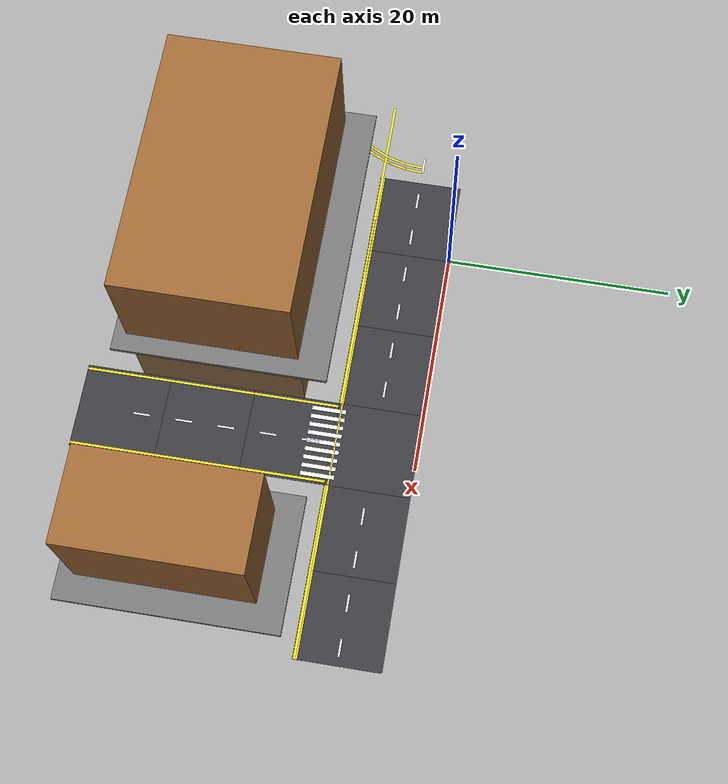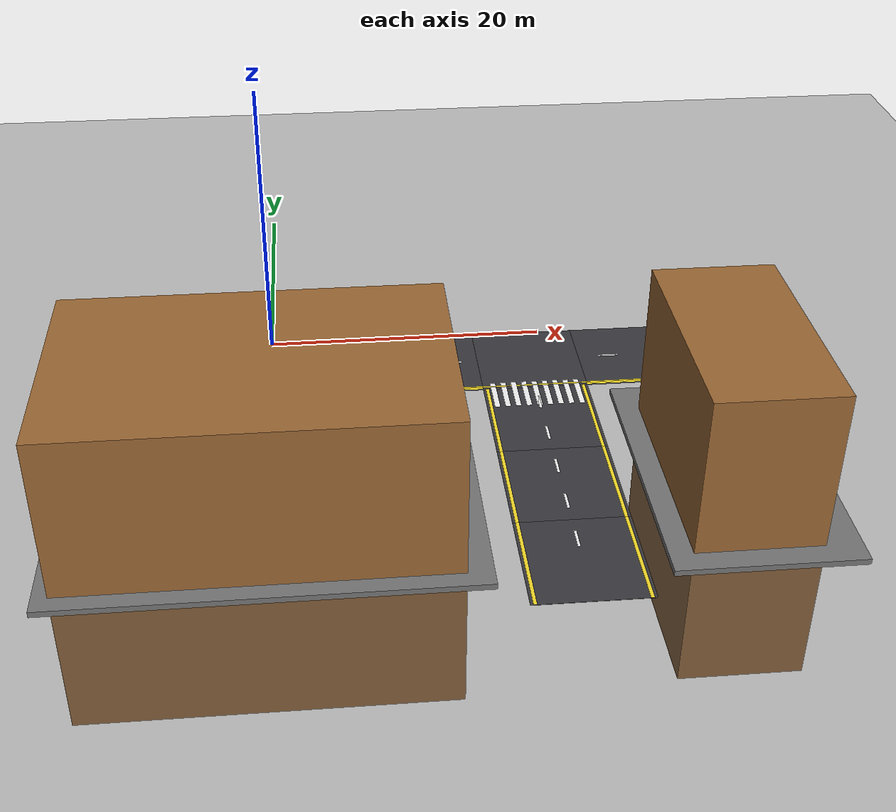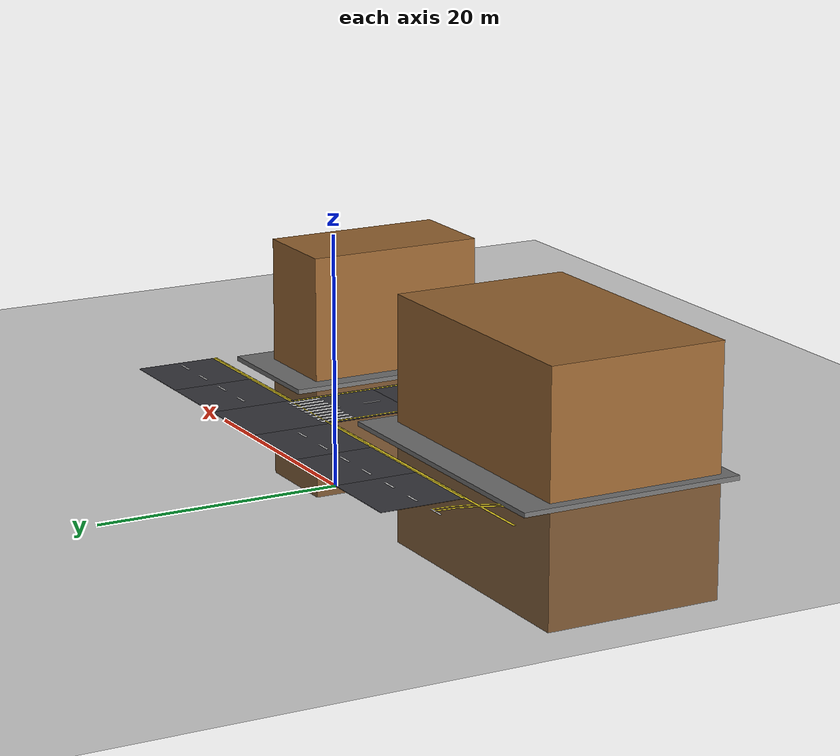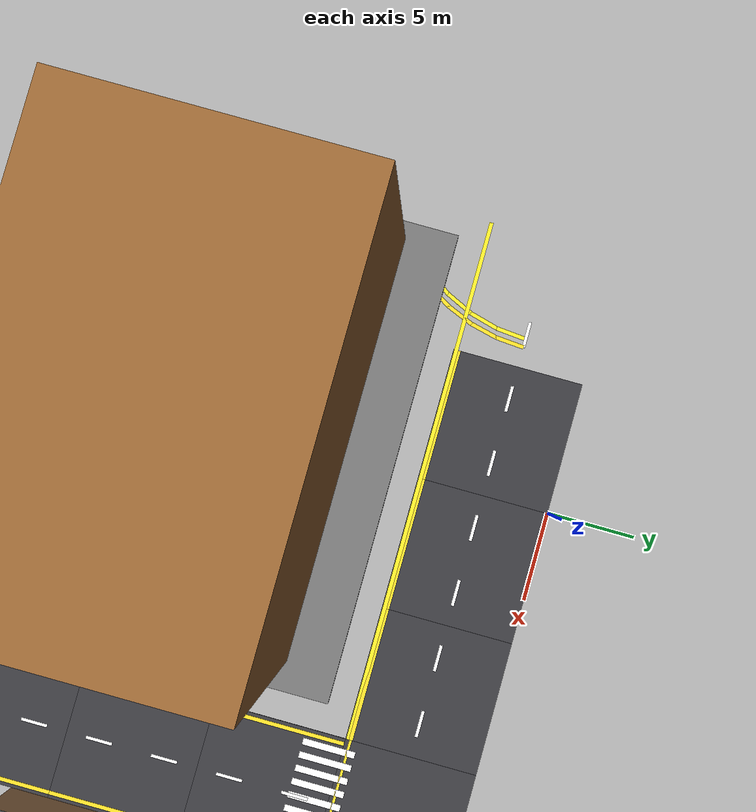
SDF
<sdf version="1.7">
 <world name="compact_city">
  <model name="ground_plane">
   <static>1</static>
   <pose>0 0 0.01 0 -0 0</pose>
   <link name="link">
    <collision name="collision">
     <geometry><plane><normal>0 0 1</normal><size>200 200</size></plane></geometry>
    </collision>
    <visual name="visual">
     <geometry><plane><normal>0 0 1</normal><size>200 200</size></plane></geometry>
     <material>
      <ambient>0.2 0.2 0.2 1</ambient>
      <diffuse>0.25 0.25 0.25 1</diffuse>
      <specular>0.1 0.1 0.1 1</specular>
     </material>
    </visual>
   </link>
  </model>
  <model name="road_tile_49">
   <static>1</static>
   <pose>-3.75 -3.75 0.015 0 -0 0</pose>
   <link name="link">
    <collision name="collision"><geometry><box><size>7.5 7.5 0.03</size></box></geometry></collision>
    <visual name="visual">
     <geometry><box><size>7.5 7.5 0.03</size></box></geometry>
     <material>
      <ambient>0.18 0.18 0.2 1</ambient>
      <diffuse>0.22 0.22 0.24 1</diffuse>
      <specular>0.1 0.1 0.1 1</specular>
     </material>
    </visual>
   </link>
  </model>
  <model name="road_tile_50">
   <static>1</static>
   <pose>3.75 -3.75 0.015 0 -0 0</pose>
   <link name="link">
    <collision name="collision"><geometry><box><size>7.5 7.5 0.03</size></box></geometry></collision>
    <visual name="visual">
     <geometry><box><size>7.5 7.5 0.03</size></box></geometry>
     <material>
      <ambient>0.18 0.18 0.2 1</ambient>
      <diffuse>0.22 0.22 0.24 1</diffuse>
      <specular>0.1 0.1 0.1 1</specular>
     </material>
    </visual>
   </link>
  </model>
  <model name="road_tile_51">
   <static>1</static>
   <pose>11.25 -3.75 0.015 0 -0 0</pose>
   <link name="link">
    <collision name="collision"><geometry><box><size>7.5 7.5 0.03</size></box></geometry></collision>
    <visual name="visual">
     <geometry><box><size>7.5 7.5 0.03</size></box></geometry>
     <material>
      <ambient>0.18 0.18 0.2 1</ambient>
      <diffuse>0.22 0.22 0.24 1</diffuse>
      <specular>0.1 0.1 0.1 1</specular>
     </material>
    </visual>
   </link>
  </model>
  <model name="road_tile_52">
   <static>1</static>
   <pose>18.75 -3.75 0.015 0 -0 0</pose>
   <link name="link">
    <collision name="collision"><geometry><box><size>7.5 7.5 0.03</size></box></geometry></collision>
    <visual name="visual">
     <geometry><box><size>7.5 7.5 0.03</size></box></geometry>
     <material>
      <ambient>0.18 0.18 0.2 1</ambient>
      <diffuse>0.22 0.22 0.24 1</diffuse>
      <specular>0.1 0.1 0.1 1</specular>
     </material>
    </visual>
   </link>
  </model>
  <model name="road_tile_53">
   <static>1</static>
   <pose>26.25 -3.75 0.015 0 -0 0</pose>
   <link name="link">
    <collision name="collision"><geometry><box><size>7.5 7.5 0.03</size></box></geometry></collision>
    <visual name="visual">
     <geometry><box><size>7.5 7.5 0.03</size></box></geometry>
     <material>
      <ambient>0.18 0.18 0.2 1</ambient>
      <diffuse>0.22 0.22 0.24 1</diffuse>
      <specular>0.1 0.1 0.1 1</specular>
     </material>
    </visual>
   </link>
  </model>
  <model name="road_tile_54">
   <static>1</static>
   <pose>33.75 -3.75 0.015 0 -0 0</pose>
   <link name="link">
    <collision name="collision"><geometry><box><size>7.5 7.5 0.03</size></box></geometry></collision>
    <visual name="visual">
     <geometry><box><size>7.5 7.5 0.03</size></box></geometry>
     <material>
      <ambient>0.18 0.18 0.2 1</ambient>
      <diffuse>0.22 0.22 0.24 1</diffuse>
      <specular>0.1 0.1 0.1 1</specular>
     </material>
    </visual>
   </link>
  </model>
  <model name="road_tile_58">
   <static>1</static>
   <pose>18.75 -11.25 0.015 0 -0 1.5708</pose>
   <link name="link">
    <collision name="collision"><geometry><box><size>7.5 7.5 0.03</size></box></geometry></collision>
    <visual name="visual">
     <geometry><box><size>7.5 7.5 0.03</size></box></geometry>
     <material>
      <ambient>0.18 0.18 0.2 1</ambient>
      <diffuse>0.22 0.22 0.24 1</diffuse>
      <specular>0.1 0.1 0.1 1</specular>
     </material>
    </visual>
   </link>
  </model>
  <model name="road_tile_62">
   <static>1</static>
   <pose>18.75 -18.75 0.015 0 -0 1.5708</pose>
   <link name="link">
    <collision name="collision"><geometry><box><size>7.5 7.5 0.03</size></box></geometry></collision>
    <visual name="visual">
     <geometry><box><size>7.5 7.5 0.03</size></box></geometry>
     <material>
      <ambient>0.18 0.18 0.2 1</ambient>
      <diffuse>0.22 0.22 0.24 1</diffuse>
      <specular>0.1 0.1 0.1 1</specular>
     </material>
    </visual>
   </link>
  </model>
  <model name="road_tile_66">
   <static>1</static>
   <pose>18.75 -26.25 0.015 0 -0 1.5708</pose>
   <link name="link">
    <collision name="collision"><geometry><box><size>7.5 7.5 0.03</size></box></geometry></collision>
    <visual name="visual">
     <geometry><box><size>7.5 7.5 0.03</size></box></geometry>
     <material>
      <ambient>0.18 0.18 0.2 1</ambient>
      <diffuse>0.22 0.22 0.24 1</diffuse>
      <specular>0.1 0.1 0.1 1</specular>
     </material>
    </visual>
   </link>
  </model>
  <model name="sidewalk_area_bot_center">
   <static>1</static>
   <pose>-0.189123 -18.6924 0.2 0 -0 0</pose>
   <link name="link">
    <collision name="collision"><geometry><box><size>27 19.5 0.4</size></box></geometry></collision>
    <visual name="visual">
     <geometry><box><size>27 19.5 0.4</size></box></geometry>
     <material>
      <ambient>0.4 0.4 0.4 1</ambient>
      <diffuse>0.45 0.45 0.45 1</diffuse>
      <specular>0.2 0.2 0.2 1</specular>
     </material>
    </visual>
   </link>
  </model>
  <model name="sidewalk_area_bot_right">
   <static>1</static>
   <pose>29.8683 -18.5038 0.2 0 -0 0</pose>
   <link name="link">
    <collision name="collision"><geometry><box><size>12 19.5 0.4</size></box></geometry></collision>
    <visual name="visual">
     <geometry><box><size>12 19.5 0.4</size></box></geometry>
     <material>
      <ambient>0.4 0.4 0.4 1</ambient>
      <diffuse>0.45 0.45 0.45 1</diffuse>
      <specular>0.2 0.2 0.2 1</specular>
     </material>
    </visual>
   </link>
  </model>
  <model name="el_189">
   <static>1</static>
   <pose>-3.75 -7.2 0.038 0 -0 0</pose>
   <link name="link">
    <visual name="v">
     <geometry><box><size>7.5 0.225 0.002</size></box></geometry>
     <material><ambient>0.9 0.8 0.1 1</ambient><diffuse>0.95 0.85 0.15 1</diffuse></material>
    </visual>
   </link>
  </model>
  <model name="el_199">
   <static>1</static>
   <pose>3.75 -7.2 0.038 0 -0 0</pose>
   <link name="link">
    <visual name="v">
     <geometry><box><size>7.5 0.225 0.002</size></box></geometry>
     <material><ambient>0.9 0.8 0.1 1</ambient><diffuse>0.95 0.85 0.15 1</diffuse></material>
    </visual>
   </link>
  </model>
  <model name="el_207">
   <static>1</static>
   <pose>11.25 -7.2 0.038 0 -0 0</pose>
   <link name="link">
    <visual name="v">
     <geometry><box><size>7.5 0.225 0.002</size></box></geometry>
     <material><ambient>0.9 0.8 0.1 1</ambient><diffuse>0.95 0.85 0.15 1</diffuse></material>
    </visual>
   </link>
  </model>
  <model name="el_213">
   <static>1</static>
   <pose>15.3 -26.25 0.038 0 -0 1.5708</pose>
   <link name="link">
    <visual name="v">
     <geometry><box><size>7.5 0.225 0.002</size></box></geometry>
     <material><ambient>0.9 0.8 0.1 1</ambient><diffuse>0.95 0.85 0.15 1</diffuse></material>
    </visual>
   </link>
  </model>
  <model name="el_214">
   <static>1</static>
   <pose>22.2 -26.25 0.038 0 -0 1.5708</pose>
   <link name="link">
    <visual name="v">
     <geometry><box><size>7.5 0.225 0.002</size></box></geometry>
     <material><ambient>0.9 0.8 0.1 1</ambient><diffuse>0.95 0.85 0.15 1</diffuse></material>
    </visual>
   </link>
  </model>
  <model name="el_215">
   <static>1</static>
   <pose>15.3 -18.75 0.038 0 -0 1.5708</pose>
   <link name="link">
    <visual name="v">
     <geometry><box><size>7.5 0.225 0.002</size></box></geometry>
     <material><ambient>0.9 0.8 0.1 1</ambient><diffuse>0.95 0.85 0.15 1</diffuse></material>
    </visual>
   </link>
  </model>
  <model name="el_216">
   <static>1</static>
   <pose>22.2 -18.75 0.038 0 -0 1.5708</pose>
   <link name="link">
    <visual name="v">
     <geometry><box><size>7.5 0.225 0.002</size></box></geometry>
     <material><ambient>0.9 0.8 0.1 1</ambient><diffuse>0.95 0.85 0.15 1</diffuse></material>
    </visual>
   </link>
  </model>
  <model name="el_217">
   <static>1</static>
   <pose>15.3 -11.25 0.038 0 -0 1.5708</pose>
   <link name="link">
    <visual name="v">
     <geometry><box><size>7.5 0.225 0.002</size></box></geometry>
     <material><ambient>0.9 0.8 0.1 1</ambient><diffuse>0.95 0.85 0.15 1</diffuse></material>
    </visual>
   </link>
  </model>
  <model name="el_218">
   <static>1</static>
   <pose>22.2 -11.25 0.038 0 -0 1.5708</pose>
   <link name="link">
    <visual name="v">
     <geometry><box><size>7.5 0.225 0.002</size></box></geometry>
     <material><ambient>0.9 0.8 0.1 1</ambient><diffuse>0.95 0.85 0.15 1</diffuse></material>
    </visual>
   </link>
  </model>
  <model name="el_231">
   <static>1</static>
   <pose>26.25 -7.2 0.038 0 -0 0</pose>
   <link name="link">
    <visual name="v">
     <geometry><box><size>7.5 0.225 0.002</size></box></geometry>
     <material><ambient>0.9 0.8 0.1 1</ambient><diffuse>0.95 0.85 0.15 1</diffuse></material>
    </visual>
   </link>
  </model>
  <model name="el_239">
   <static>1</static>
   <pose>33.75 -7.2 0.038 0 -0 0</pose>
   <link name="link">
    <visual name="v">
     <geometry><box><size>7.5 0.225 0.002</size></box></geometry>
     <material><ambient>0.9 0.8 0.1 1</ambient><diffuse>0.95 0.85 0.15 1</diffuse></material>
    </visual>
   </link>
  </model>
  <model name="ld_34">
   <static>1</static>
   <pose>18.75 -24.375 0.038 0 -0 1.5708</pose>
   <link name="link">
    <visual name="v">
     <geometry><box><size>1.5 0.18 0.002</size></box></geometry>
     <material><ambient>1 1 1 1</ambient><diffuse>0.95 0.95 0.95 1</diffuse></material>
    </visual>
   </link>
  </model>
  <model name="ld_35">
   <static>1</static>
   <pose>18.75 -20.625 0.038 0 -0 1.5708</pose>
   <link name="link">
    <visual name="v">
     <geometry><box><size>1.5 0.18 0.002</size></box></geometry>
     <material><ambient>1 1 1 1</ambient><diffuse>0.95 0.95 0.95 1</diffuse></material>
    </visual>
   </link>
  </model>
  <model name="ld_36">
   <static>1</static>
   <pose>18.75 -16.875 0.038 0 -0 1.5708</pose>
   <link name="link">
    <visual name="v">
     <geometry><box><size>1.5 0.18 0.002</size></box></geometry>
     <material><ambient>1 1 1 1</ambient><diffuse>0.95 0.95 0.95 1</diffuse></material>
    </visual>
   </link>
  </model>
  <model name="ld_37">
   <static>1</static>
   <pose>18.75 -13.125 0.038 0 -0 1.5708</pose>
   <link name="link">
    <visual name="v">
     <geometry><box><size>1.5 0.18 0.002</size></box></geometry>
     <material><ambient>1 1 1 1</ambient><diffuse>0.95 0.95 0.95 1</diffuse></material>
    </visual>
   </link>
  </model>
  <model name="ld_38">
   <static>1</static>
   <pose>18.75 -9.375 0.038 0 -0 1.5708</pose>
   <link name="link">
    <visual name="v">
     <geometry><box><size>1.5 0.18 0.002</size></box></geometry>
     <material><ambient>1 1 1 1</ambient><diffuse>0.95 0.95 0.95 1</diffuse></material>
    </visual>
   </link>
  </model>
  <model name="ld_106">
   <static>1</static>
   <pose>-9.375 -3.75 0.038 0 -0 0</pose>
   <link name="link">
    <visual name="v">
     <geometry><box><size>1.5 0.18 0.002</size></box></geometry>
     <material><ambient>1 1 1 1</ambient><diffuse>0.95 0.95 0.95 1</diffuse></material>
    </visual>
   </link>
  </model>
  <model name="ld_107">
   <static>1</static>
   <pose>-5.625 -3.75 0.038 0 -0 0</pose>
   <link name="link">
    <visual name="v">
     <geometry><box><size>1.5 0.18 0.002</size></box></geometry>
     <material><ambient>1 1 1 1</ambient><diffuse>0.95 0.95 0.95 1</diffuse></material>
    </visual>
   </link>
  </model>
  <model name="ld_108">
   <static>1</static>
   <pose>-1.875 -3.75 0.038 0 -0 0</pose>
   <link name="link">
    <visual name="v">
     <geometry><box><size>1.5 0.18 0.002</size></box></geometry>
     <material><ambient>1 1 1 1</ambient><diffuse>0.95 0.95 0.95 1</diffuse></material>
    </visual>
   </link>
  </model>
  <model name="ld_109">
   <static>1</static>
   <pose>1.875 -3.75 0.038 0 -0 0</pose>
   <link name="link">
    <visual name="v">
     <geometry><box><size>1.5 0.18 0.002</size></box></geometry>
     <material><ambient>1 1 1 1</ambient><diffuse>0.95 0.95 0.95 1</diffuse></material>
    </visual>
   </link>
  </model>
  <model name="ld_110">
   <static>1</static>
   <pose>5.625 -3.75 0.038 0 -0 0</pose>
   <link name="link">
    <visual name="v">
     <geometry><box><size>1.5 0.18 0.002</size></box></geometry>
     <material><ambient>1 1 1 1</ambient><diffuse>0.95 0.95 0.95 1</diffuse></material>
    </visual>
   </link>
  </model>
  <model name="ld_111">
   <static>1</static>
   <pose>9.375 -3.75 0.038 0 -0 0</pose>
   <link name="link">
    <visual name="v">
     <geometry><box><size>1.5 0.18 0.002</size></box></geometry>
     <material><ambient>1 1 1 1</ambient><diffuse>0.95 0.95 0.95 1</diffuse></material>
    </visual>
   </link>
  </model>
  <model name="ld_112">
   <static>1</static>
   <pose>13.125 -3.75 0.038 0 -0 0</pose>
   <link name="link">
    <visual name="v">
     <geometry><box><size>1.5 0.18 0.002</size></box></geometry>
     <material><ambient>1 1 1 1</ambient><diffuse>0.95 0.95 0.95 1</diffuse></material>
    </visual>
   </link>
  </model>
  <model name="ld_113">
   <static>1</static>
   <pose>24.75 -3.75 0.038 0 -0 0</pose>
   <link name="link">
    <visual name="v">
     <geometry><box><size>1.5 0.18 0.002</size></box></geometry>
     <material><ambient>1 1 1 1</ambient><diffuse>0.95 0.95 0.95 1</diffuse></material>
    </visual>
   </link>
  </model>
  <model name="ld_114">
   <static>1</static>
   <pose>28.5 -3.75 0.038 0 -0 0</pose>
   <link name="link">
    <visual name="v">
     <geometry><box><size>1.5 0.18 0.002</size></box></geometry>
     <material><ambient>1 1 1 1</ambient><diffuse>0.95 0.95 0.95 1</diffuse></material>
    </visual>
   </link>
  </model>
  <model name="ld_115">
   <static>1</static>
   <pose>32.25 -3.75 0.038 0 -0 0</pose>
   <link name="link">
    <visual name="v">
     <geometry><box><size>1.5 0.18 0.002</size></box></geometry>
     <material><ambient>1 1 1 1</ambient><diffuse>0.95 0.95 0.95 1</diffuse></material>
    </visual>
   </link>
  </model>
  <model name="ld_116">
   <static>1</static>
   <pose>36 -3.75 0.038 0 -0 0</pose>
   <link name="link">
    <visual name="v">
     <geometry><box><size>1.5 0.18 0.002</size></box></geometry>
     <material><ambient>1 1 1 1</ambient><diffuse>0.95 0.95 0.95 1</diffuse></material>
    </visual>
   </link>
  </model>
  <model name="ie_319">
   <static>1</static>
   <pose>18.75 -7.2 0.038 0 -0 0</pose>
   <link name="link">
    <visual name="v">
     <geometry><box><size>7.5 0.15 0.002</size></box></geometry>
     <material><ambient>0.9 0.8 0.1 1</ambient><diffuse>0.95 0.85 0.15 1</diffuse></material>
    </visual>
   </link>
  </model>
  <model name="ro_709">
   <static>1</static>
   <pose>-11.1288 -10.4043 0.038 0 -0 0.863915</pose>
   <link name="link">
    <visual name="v">
     <geometry><box><size>1.6806 0.225 0.002</size></box></geometry>
     <material><ambient>0.9 0.8 0.1 1</ambient><diffuse>0.95 0.85 0.15 1</diffuse></material>
    </visual>
   </link>
  </model>
  <model name="ro_710">
   <static>1</static>
   <pose>-10.188 -9.1095 0.038 0 -0 1.02102</pose>
   <link name="link">
    <visual name="v">
     <geometry><box><size>1.6806 0.225 0.002</size></box></geometry>
     <material><ambient>0.9 0.8 0.1 1</ambient><diffuse>0.95 0.85 0.15 1</diffuse></material>
    </visual>
   </link>
  </model>
  <model name="ro_711">
   <static>1</static>
   <pose>-9.4614 -7.6833 0.038 0 -0 1.17812</pose>
   <link name="link">
    <visual name="v">
     <geometry><box><size>1.6806 0.225 0.002</size></box></geometry>
     <material><ambient>0.9 0.8 0.1 1</ambient><diffuse>0.95 0.85 0.15 1</diffuse></material>
    </visual>
   </link>
  </model>
  <model name="ro_712">
   <static>1</static>
   <pose>-8.96685 -6.1611 0.038 0 -0 1.33522</pose>
   <link name="link">
    <visual name="v">
     <geometry><box><size>1.6806 0.225 0.002</size></box></geometry>
     <material><ambient>0.9 0.8 0.1 1</ambient><diffuse>0.95 0.85 0.15 1</diffuse></material>
    </visual>
   </link>
  </model>
  <model name="ro_713">
   <static>1</static>
   <pose>-8.7165 -4.58025 0.038 0 -0 1.49222</pose>
   <link name="link">
    <visual name="v">
     <geometry><box><size>1.6806 0.225 0.002</size></box></geometry>
     <material><ambient>0.9 0.8 0.1 1</ambient><diffuse>0.95 0.85 0.15 1</diffuse></material>
    </visual>
   </link>
  </model>
  <model name="edge_h_15">
   <static>1</static>
   <pose>0 -7.35 0.038 0 -0 0</pose>
   <link name="link">
    <visual name="visual">
     <geometry><box><size>30 0.225 0.002</size></box></geometry>
     <material><ambient>0.95 0.85 0.1 1</ambient><diffuse>1 0.9 0.15 1</diffuse></material>
    </visual>
   </link>
  </model>
  <model name="edge_h_17">
   <static>1</static>
   <pose>30 -7.35 0.038 0 -0 0</pose>
   <link name="link">
    <visual name="visual">
     <geometry><box><size>15 0.225 0.002</size></box></geometry>
     <material><ambient>0.95 0.85 0.1 1</ambient><diffuse>1 0.9 0.15 1</diffuse></material>
    </visual>
   </link>
  </model>
  <model name="ra_outer_569">
   <static>1</static>
   <pose>-10.9287 -9.35115 0.038 0 -0 0.9599</pose>
   <link name="link">
    <visual name="visual">
     <geometry><box><size>1.72953 0.225 0.002</size></box></geometry>
     <material><ambient>0.95 0.85 0.1 1</ambient><diffuse>1 0.9 0.15 1</diffuse></material>
    </visual>
   </link>
  </model>
  <model name="ra_outer_570">
   <static>1</static>
   <pose>-10.0821 -7.8849 0.038 0 -0 1.1345</pose>
   <link name="link">
    <visual name="visual">
     <geometry><box><size>1.72953 0.225 0.002</size></box></geometry>
     <material><ambient>0.95 0.85 0.1 1</ambient><diffuse>1 0.9 0.15 1</diffuse></material>
    </visual>
   </link>
  </model>
  <model name="ra_outer_571">
   <static>1</static>
   <pose>-9.5031 -6.29385 0.038 0 -0 1.309</pose>
   <link name="link">
    <visual name="visual">
     <geometry><box><size>1.72953 0.225 0.002</size></box></geometry>
     <material><ambient>0.95 0.85 0.1 1</ambient><diffuse>1 0.9 0.15 1</diffuse></material>
    </visual>
   </link>
  </model>
  <model name="ra_outer_572">
   <static>1</static>
   <pose>-9.2091 -4.6266 0.038 0 -0 1.4835</pose>
   <link name="link">
    <visual name="visual">
     <geometry><box><size>1.72953 0.225 0.002</size></box></geometry>
     <material><ambient>0.95 0.85 0.1 1</ambient><diffuse>1 0.9 0.15 1</diffuse></material>
    </visual>
   </link>
  </model>
  <model name="xwalk_618">
   <static>1</static>
   <pose>15.75 -8.25 0.038 0 -0 1.5708</pose>
   <link name="link">
    <visual name="visual">
     <geometry><box><size>3 0.375 0.002</size></box></geometry>
     <material><ambient>1 1 1 1</ambient><diffuse>0.95 0.95 0.95 1</diffuse></material>
    </visual>
   </link>
  </model>
  <model name="xwalk_619">
   <static>1</static>
   <pose>16.5 -8.25 0.038 0 -0 1.5708</pose>
   <link name="link">
    <visual name="visual">
     <geometry><box><size>3 0.375 0.002</size></box></geometry>
     <material><ambient>1 1 1 1</ambient><diffuse>0.95 0.95 0.95 1</diffuse></material>
    </visual>
   </link>
  </model>
  <model name="xwalk_620">
   <static>1</static>
   <pose>17.25 -8.25 0.038 0 -0 1.5708</pose>
   <link name="link">
    <visual name="visual">
     <geometry><box><size>3 0.375 0.002</size></box></geometry>
     <material><ambient>1 1 1 1</ambient><diffuse>0.95 0.95 0.95 1</diffuse></material>
    </visual>
   </link>
  </model>
  <model name="xwalk_621">
   <static>1</static>
   <pose>18 -8.25 0.038 0 -0 1.5708</pose>
   <link name="link">
    <visual name="visual">
     <geometry><box><size>3 0.375 0.002</size></box></geometry>
     <material><ambient>1 1 1 1</ambient><diffuse>0.95 0.95 0.95 1</diffuse></material>
    </visual>
   </link>
  </model>
  <model name="xwalk_622">
   <static>1</static>
   <pose>18.75 -8.25 0.038 0 -0 1.5708</pose>
   <link name="link">
    <visual name="visual">
     <geometry><box><size>3 0.375 0.002</size></box></geometry>
     <material><ambient>1 1 1 1</ambient><diffuse>0.95 0.95 0.95 1</diffuse></material>
    </visual>
   </link>
  </model>
  <model name="xwalk_623">
   <static>1</static>
   <pose>19.5 -8.25 0.038 0 -0 1.5708</pose>
   <link name="link">
    <visual name="visual">
     <geometry><box><size>3 0.375 0.002</size></box></geometry>
     <material><ambient>1 1 1 1</ambient><diffuse>0.95 0.95 0.95 1</diffuse></material>
    </visual>
   </link>
  </model>
  <model name="xwalk_624">
   <static>1</static>
   <pose>20.25 -8.25 0.038 0 -0 1.5708</pose>
   <link name="link">
    <visual name="visual">
     <geometry><box><size>3 0.375 0.002</size></box></geometry>
     <material><ambient>1 1 1 1</ambient><diffuse>0.95 0.95 0.95 1</diffuse></material>
    </visual>
   </link>
  </model>
  <model name="xwalk_625">
   <static>1</static>
   <pose>21 -8.25 0.038 0 -0 1.5708</pose>
   <link name="link">
    <visual name="visual">
     <geometry><box><size>3 0.375 0.002</size></box></geometry>
     <material><ambient>1 1 1 1</ambient><diffuse>0.95 0.95 0.95 1</diffuse></material>
    </visual>
   </link>
  </model>
  <model name="xwalk_626">
   <static>1</static>
   <pose>21.75 -8.25 0.038 0 -0 1.5708</pose>
   <link name="link">
    <visual name="visual">
     <geometry><box><size>3 0.375 0.002</size></box></geometry>
     <material><ambient>1 1 1 1</ambient><diffuse>0.95 0.95 0.95 1</diffuse></material>
    </visual>
   </link>
  </model>
  <model name="box_7_clone">
   <static>1</static>
   <pose>29.4647 -18.9958 0.6 0 -0 0</pose>
   <link name="link">
    <collision name="collision"><geometry><box><size>8.15504 15.5641 21.323</size></box></geometry></collision>
    <visual name="visual">
     <geometry><box><size>8.15504 15.5641 21.323</size></box></geometry>
     <material><ambient>0.6 0.4 0.2 1</ambient><diffuse>0.6 0.4 0.2 1</diffuse></material>
    </visual>
   </link>
  </model>
  <model name="box_7_clone_clone_clone_0">
   <static>1</static>
   <pose>-0.522371 -19.5413 0.6 0 -0 0</pose>
   <link name="link">
    <collision name="collision"><geometry><box><size>24.394 15.5641 21.3231</size></box></geometry></collision>
    <visual name="visual">
     <geometry><box><size>24.394 15.5641 21.3231</size></box></geometry>
     <material><ambient>0.6 0.4 0.2 1</ambient><diffuse>0.6 0.4 0.2 1</diffuse></material>
    </visual>
   </link>
  </model>
 </world>
</sdf>
